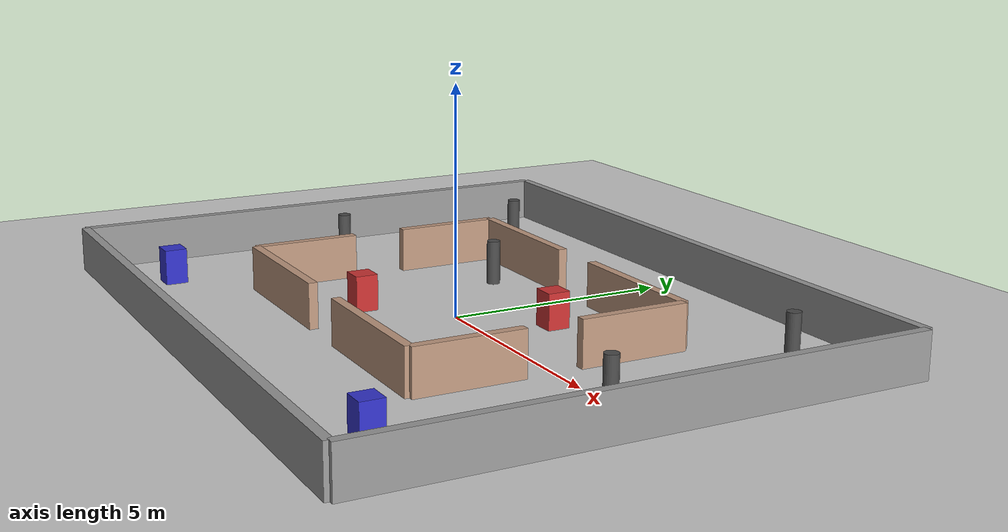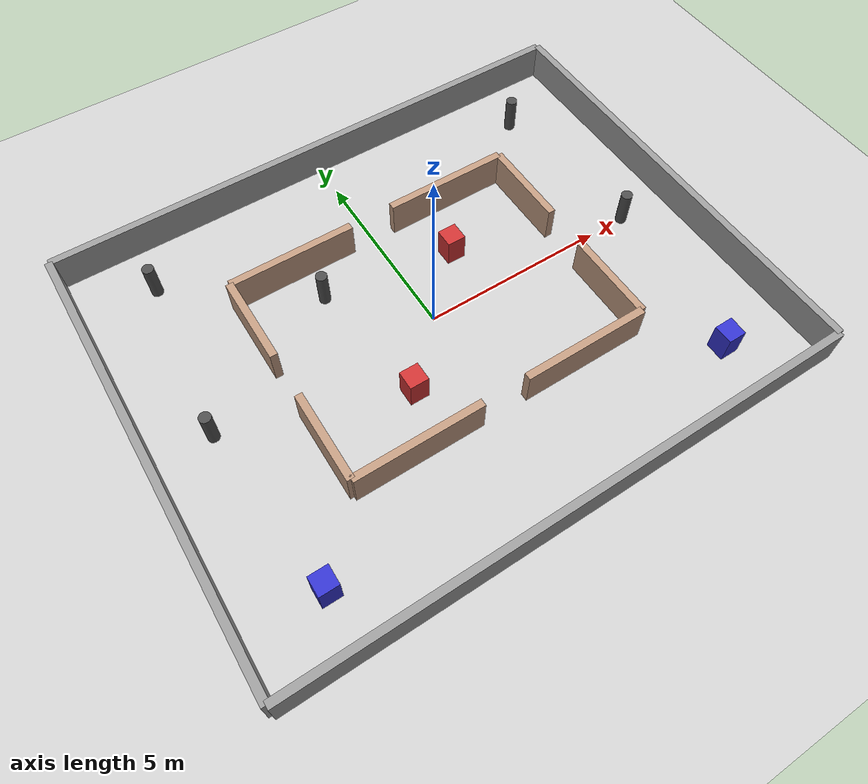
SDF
<?xml version="1.0"?>
<sdf version="1.6">
  <world name="complex_rooms">
    <include>
      <uri>model://ground_plane</uri>
    </include>
    <include>
      <uri>model://sun</uri>
    </include>
    <light name="world_light" type="directional">
      <pose>0 0 10 0 0 0</pose>
      <diffuse>0.8 0.8 0.8 1</diffuse>
      <specular>0.2 0.2 0.2 1</specular>
      <direction>0 0 -1</direction>
    </light>

    <model name="wall_north">
      <static>true</static>
      <link name="link">
        <collision name="collision">
          <geometry><box><size>15 0.2 1</size></box></geometry>
        </collision>
        <visual name="visual">
          <geometry><box><size>15 0.2 1</size></box></geometry>
          <material><ambient>0.6 0.6 0.6 1</ambient><diffuse>0.6 0.6 0.6 1</diffuse></material>
        </visual>
      </link>
      <pose>0 6 0.5 0 0 0.0</pose>
    </model>

    <model name="wall_south">
      <static>true</static>
      <link name="link">
        <collision name="collision">
          <geometry><box><size>15 0.2 1</size></box></geometry>
        </collision>
        <visual name="visual">
          <geometry><box><size>15 0.2 1</size></box></geometry>
          <material><ambient>0.6 0.6 0.6 1</ambient><diffuse>0.6 0.6 0.6 1</diffuse></material>
        </visual>
      </link>
      <pose>0 -6 0.5 0 0 0.0</pose>
    </model>

    <model name="wall_east">
      <static>true</static>
      <link name="link">
        <collision name="collision">
          <geometry><box><size>0.2 12 1</size></box></geometry>
        </collision>
        <visual name="visual">
          <geometry><box><size>0.2 12 1</size></box></geometry>
          <material><ambient>0.6 0.6 0.6 1</ambient><diffuse>0.6 0.6 0.6 1</diffuse></material>
        </visual>
      </link>
      <pose>7.5 0 0.5 0 0 0.0</pose>
    </model>

    <model name="wall_west">
      <static>true</static>
      <link name="link">
        <collision name="collision">
          <geometry><box><size>0.2 12 1</size></box></geometry>
        </collision>
        <visual name="visual">
          <geometry><box><size>0.2 12 1</size></box></geometry>
          <material><ambient>0.6 0.6 0.6 1</ambient><diffuse>0.6 0.6 0.6 1</diffuse></material>
        </visual>
      </link>
      <pose>-7.5 0 0.5 0 0 0.0</pose>
    </model>

    <model name="room_north_L">
      <static>true</static>
      <link name="link">
        <collision name="collision">
          <geometry><box><size>3.4 0.2 1</size></box></geometry>
        </collision>
        <visual name="visual">
          <geometry><box><size>3.4 0.2 1</size></box></geometry>
          <material><ambient>0.75 0.6 0.5 1</ambient><diffuse>0.75 0.6 0.5 1</diffuse></material>
        </visual>
      </link>
      <pose>-2.3 3 0.5 0 0 0.0</pose>
    </model>

    <model name="room_north_R">
      <static>true</static>
      <link name="link">
        <collision name="collision">
          <geometry><box><size>3.4 0.2 1</size></box></geometry>
        </collision>
        <visual name="visual">
          <geometry><box><size>3.4 0.2 1</size></box></geometry>
          <material><ambient>0.75 0.6 0.5 1</ambient><diffuse>0.75 0.6 0.5 1</diffuse></material>
        </visual>
      </link>
      <pose>2.3 3 0.5 0 0 0.0</pose>
    </model>

    <model name="room_south_L">
      <static>true</static>
      <link name="link">
        <collision name="collision">
          <geometry><box><size>3.4 0.2 1</size></box></geometry>
        </collision>
        <visual name="visual">
          <geometry><box><size>3.4 0.2 1</size></box></geometry>
          <material><ambient>0.75 0.6 0.5 1</ambient><diffuse>0.75 0.6 0.5 1</diffuse></material>
        </visual>
      </link>
      <pose>-2.3 -3 0.5 0 0 0.0</pose>
    </model>

    <model name="room_south_R">
      <static>true</static>
      <link name="link">
        <collision name="collision">
          <geometry><box><size>3.4 0.2 1</size></box></geometry>
        </collision>
        <visual name="visual">
          <geometry><box><size>3.4 0.2 1</size></box></geometry>
          <material><ambient>0.75 0.6 0.5 1</ambient><diffuse>0.75 0.6 0.5 1</diffuse></material>
        </visual>
      </link>
      <pose>2.3 -3 0.5 0 0 0.0</pose>
    </model>

    <model name="room_east_D">
      <static>true</static>
      <link name="link">
        <collision name="collision">
          <geometry><box><size>0.2 2.4 1</size></box></geometry>
        </collision>
        <visual name="visual">
          <geometry><box><size>0.2 2.4 1</size></box></geometry>
          <material><ambient>0.75 0.6 0.5 1</ambient><diffuse>0.75 0.6 0.5 1</diffuse></material>
        </visual>
      </link>
      <pose>4 -1.8 0.5 0 0 0.0</pose>
    </model>

    <model name="room_east_U">
      <static>true</static>
      <link name="link">
        <collision name="collision">
          <geometry><box><size>0.2 2.4 1</size></box></geometry>
        </collision>
        <visual name="visual">
          <geometry><box><size>0.2 2.4 1</size></box></geometry>
          <material><ambient>0.75 0.6 0.5 1</ambient><diffuse>0.75 0.6 0.5 1</diffuse></material>
        </visual>
      </link>
      <pose>4 1.8 0.5 0 0 0.0</pose>
    </model>

    <model name="room_west_D">
      <static>true</static>
      <link name="link">
        <collision name="collision">
          <geometry><box><size>0.2 2.4 1</size></box></geometry>
        </collision>
        <visual name="visual">
          <geometry><box><size>0.2 2.4 1</size></box></geometry>
          <material><ambient>0.75 0.6 0.5 1</ambient><diffuse>0.75 0.6 0.5 1</diffuse></material>
        </visual>
      </link>
      <pose>-4 -1.8 0.5 0 0 0.0</pose>
    </model>

    <model name="room_west_U">
      <static>true</static>
      <link name="link">
        <collision name="collision">
          <geometry><box><size>0.2 2.4 1</size></box></geometry>
        </collision>
        <visual name="visual">
          <geometry><box><size>0.2 2.4 1</size></box></geometry>
          <material><ambient>0.75 0.6 0.5 1</ambient><diffuse>0.75 0.6 0.5 1</diffuse></material>
        </visual>
      </link>
      <pose>-4 1.8 0.5 0 0 0.0</pose>
    </model>

    <model name="box_r1">
      <static>true</static>
      <link name="link">
        <collision name="collision">
          <geometry><box><size>0.5 0.5 0.8</size></box></geometry>
        </collision>
        <visual name="visual">
          <geometry><box><size>0.5 0.5 0.8</size></box></geometry>
          <material><ambient>0.8 0.2 0.2 1</ambient><diffuse>0.8 0.2 0.2 1</diffuse></material>
        </visual>
      </link>
      <pose>1.5 1.5 0.4 0 0 0.0</pose>
    </model>

    <model name="box_r2">
      <static>true</static>
      <link name="link">
        <collision name="collision">
          <geometry><box><size>0.5 0.5 0.8</size></box></geometry>
        </collision>
        <visual name="visual">
          <geometry><box><size>0.5 0.5 0.8</size></box></geometry>
          <material><ambient>0.8 0.2 0.2 1</ambient><diffuse>0.8 0.2 0.2 1</diffuse></material>
        </visual>
      </link>
      <pose>-1.5 -1.5 0.4 0 0 0.0</pose>
    </model>

    <model name="pillar_r">
      <static>true</static>
      <link name="link">
        <collision name="collision">
          <geometry><cylinder><radius>0.15</radius><length>1</length></cylinder></geometry>
        </collision>
        <visual name="visual">
          <geometry><cylinder><radius>0.15</radius><length>1</length></cylinder></geometry>
          <material><ambient>0.3 0.3 0.3 1</ambient><diffuse>0.3 0.3 0.3 1</diffuse></material>
        </visual>
      </link>
      <pose>-2 2 0.5 0 0 0</pose>
    </model>

    <model name="pillar_ne">
      <static>true</static>
      <link name="link">
        <collision name="collision">
          <geometry><cylinder><radius>0.15</radius><length>1</length></cylinder></geometry>
        </collision>
        <visual name="visual">
          <geometry><cylinder><radius>0.15</radius><length>1</length></cylinder></geometry>
          <material><ambient>0.3 0.3 0.3 1</ambient><diffuse>0.3 0.3 0.3 1</diffuse></material>
        </visual>
      </link>
      <pose>5.5 4.5 0.5 0 0 0</pose>
    </model>

    <model name="pillar_nw">
      <static>true</static>
      <link name="link">
        <collision name="collision">
          <geometry><cylinder><radius>0.15</radius><length>1</length></cylinder></geometry>
        </collision>
        <visual name="visual">
          <geometry><cylinder><radius>0.15</radius><length>1</length></cylinder></geometry>
          <material><ambient>0.3 0.3 0.3 1</ambient><diffuse>0.3 0.3 0.3 1</diffuse></material>
        </visual>
      </link>
      <pose>-5.5 4.5 0.5 0 0 0</pose>
    </model>

    <model name="box_se">
      <static>true</static>
      <link name="link">
        <collision name="collision">
          <geometry><box><size>0.5 0.5 0.8</size></box></geometry>
        </collision>
        <visual name="visual">
          <geometry><box><size>0.5 0.5 0.8</size></box></geometry>
          <material><ambient>0.2 0.2 0.8 1</ambient><diffuse>0.2 0.2 0.8 1</diffuse></material>
        </visual>
      </link>
      <pose>5.5 -4.5 0.4 0 0 0.0</pose>
    </model>

    <model name="box_sw">
      <static>true</static>
      <link name="link">
        <collision name="collision">
          <geometry><box><size>0.5 0.5 0.8</size></box></geometry>
        </collision>
        <visual name="visual">
          <geometry><box><size>0.5 0.5 0.8</size></box></geometry>
          <material><ambient>0.2 0.2 0.8 1</ambient><diffuse>0.2 0.2 0.8 1</diffuse></material>
        </visual>
      </link>
      <pose>-5.5 -4.5 0.4 0 0 0.0</pose>
    </model>

    <model name="pillar_e">
      <static>true</static>
      <link name="link">
        <collision name="collision">
          <geometry><cylinder><radius>0.15</radius><length>1</length></cylinder></geometry>
        </collision>
        <visual name="visual">
          <geometry><cylinder><radius>0.15</radius><length>1</length></cylinder></geometry>
          <material><ambient>0.3 0.3 0.3 1</ambient><diffuse>0.3 0.3 0.3 1</diffuse></material>
        </visual>
      </link>
      <pose>6 0 0.5 0 0 0</pose>
    </model>

    <model name="pillar_w">
      <static>true</static>
      <link name="link">
        <collision name="collision">
          <geometry><cylinder><radius>0.15</radius><length>1</length></cylinder></geometry>
        </collision>
        <visual name="visual">
          <geometry><cylinder><radius>0.15</radius><length>1</length></cylinder></geometry>
          <material><ambient>0.3 0.3 0.3 1</ambient><diffuse>0.3 0.3 0.3 1</diffuse></material>
        </visual>
      </link>
      <pose>-6 0 0.5 0 0 0</pose>
    </model>
  </world>
</sdf>
